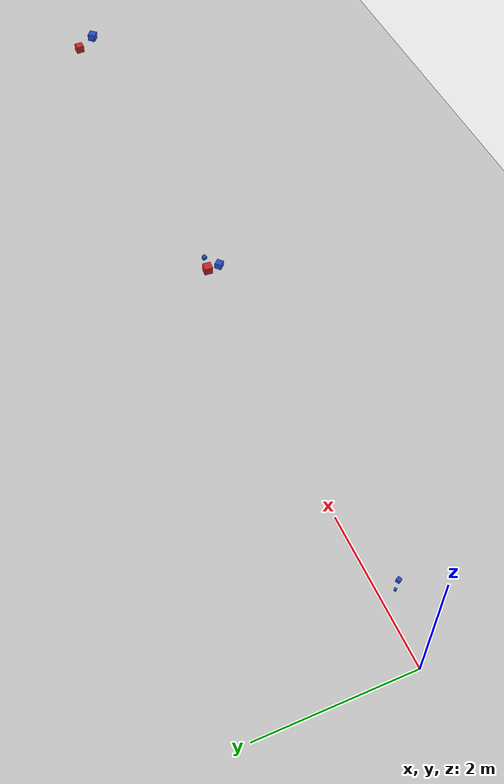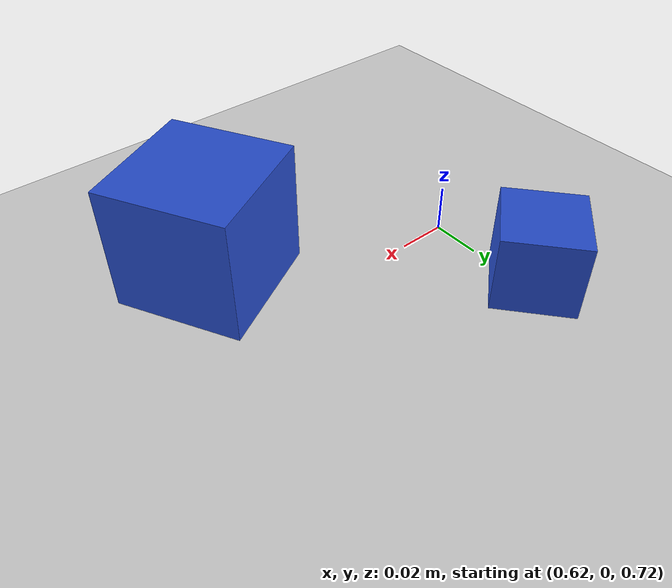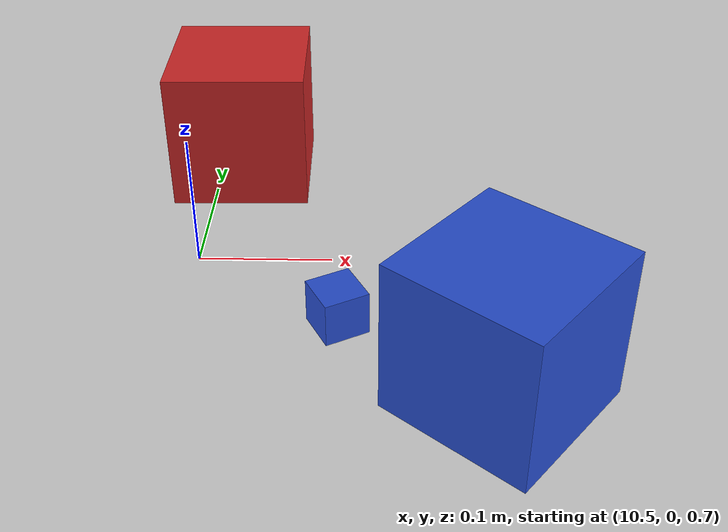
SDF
<sdf version="1.4">
 <world name="simple">
  <include><uri>model://ground_plane</uri></include>
  <include><uri>model://sun</uri></include>
  <include>
   <uri>model://blue_cube5cm</uri>
   <name>block12</name>
   <pose>0.713072616887 -0.0292858014987 0.75 0 0 0.500124438116</pose>
  </include>
  <include>
   <uri>model://blue_cube3cm</uri>
   <name>block14</name>
   <pose>0.632069324777 0.0563054480278 0.75 0 0 -2.43646721579</pose>
  </include>
  <include>
   <uri>model://red_cube11cm</uri>
   <name>block21</name>
   <pose>5.56282453672 0.105365024321 0.75 0 0 1.49714258318</pose>
  </include>
  <include>
   <uri>model://blue_cube5cm</uri>
   <name>block22</name>
   <pose>5.7582329603 0.0679344644461 0.75 0 0 0.219547503053</pose>
  </include>
  <include>
   <uri>model://blue_cube9cm</uri>
   <name>block24</name>
   <pose>5.5683994976 -0.0602882517664 0.75 0 0 -0.819139747382</pose>
  </include>
  <include>
   <uri>model://blue_cube11cm</uri>
   <name>block32</name>
   <pose>10.7141359348 -0.140709874662 0.75 0 0 0.886966666714</pose>
  </include>
  <include>
   <uri>model://red_cube11cm</uri>
   <name>block33</name>
   <pose>10.5189536412 0.141040934812 0.75 0 0 -3.119036409</pose>
  </include>
  <include>
   <uri>model://blue_cube3cm</uri>
   <name>block34</name>
   <pose>10.6104906675 -0.118560510849 0.75 0 0 0.488498586114</pose>
  </include>
 </world>
</sdf>

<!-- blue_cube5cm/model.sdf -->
<sdf version='1.4'>
  <model name="blue_cube5cm">
      <static>0</static>
      <link name='link'>
        <inertial>
          <mass>0.3</mass>
          <inertia>
            <ixx>0.001</ixx>
            <ixy>0.000000</ixy>
            <ixz>0.000000</ixz>
            <iyy>0.001</iyy>
            <iyz>0.000000</iyz>
            <izz>0.001</izz>
          </inertia>
        </inertial>
        <collision name='collision'>
          <geometry>
            <box>
              <size>0.050 0.050 0.050</size>
            </box>
          </geometry>
          <surface>
            <friction>
              <ode>
                <mu>5.0</mu>
                <mu2>5.0</mu2>
              </ode>
            </friction>
            <contact>
              <ode>
                <kp>1000000.0</kp>
                <kd>100.0</kd>
                <max_vel>1.0</max_vel>
                <min_depth>0.002</min_depth>
              </ode>
            </contact>
          </surface>
        </collision>
        <visual name='visual'>
          <geometry>
            <box>
              <size>0.050 0.050 0.050</size>
            </box>
          </geometry>
          <material>
            <script>
              <uri>file://media/materials/scripts/gazebo.material</uri>
              <name>Gazebo/Blue</name>
            </script>
          </material>
        </visual>
        <velocity_decay>
          <linear>0.000000</linear>
          <angular>0.000000</angular>
        </velocity_decay>
        <self_collide>0</self_collide>
        <kinematic>0</kinematic>
        <gravity>1</gravity>
      </link>
  </model>
</sdf>

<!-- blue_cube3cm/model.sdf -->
<sdf version='1.4'>
  <model name="blue_cube3cm">
      <static>0</static>
      <link name='link'>
        <inertial>
          <mass>0.3</mass>
          <inertia>
            <ixx>0.001</ixx>
            <ixy>0.000000</ixy>
            <ixz>0.000000</ixz>
            <iyy>0.001</iyy>
            <iyz>0.000000</iyz>
            <izz>0.001</izz>
          </inertia>
        </inertial>
        <collision name='collision'>
          <geometry>
            <box>
              <size>0.030 0.030 0.030</size>
            </box>
          </geometry>
          <surface>
            <friction>
              <ode>
                <mu>5.0</mu>
                <mu2>5.0</mu2>
              </ode>
            </friction>
            <contact>
              <ode>
                <kp>1000000.0</kp>
                <kd>100.0</kd>
                <max_vel>1.0</max_vel>
                <min_depth>0.002</min_depth>
              </ode>
            </contact>
          </surface>
        </collision>
        <visual name='visual'>
          <geometry>
            <box>
              <size>0.030 0.030 0.030</size>
            </box>
          </geometry>
          <material>
            <script>
              <uri>file://media/materials/scripts/gazebo.material</uri>
              <name>Gazebo/Blue</name>
            </script>
          </material>
        </visual>
        <velocity_decay>
          <linear>0.000000</linear>
          <angular>0.000000</angular>
        </velocity_decay>
        <self_collide>0</self_collide>
        <kinematic>0</kinematic>
        <gravity>1</gravity>
      </link>
  </model>
</sdf>

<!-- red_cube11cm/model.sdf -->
<sdf version='1.4'>
  <model name="red_cube11cm">
      <static>0</static>
      <link name='link'>
        <inertial>
          <mass>0.3</mass>
          <inertia>
            <ixx>0.001</ixx>
            <ixy>0.000000</ixy>
            <ixz>0.000000</ixz>
            <iyy>0.001</iyy>
            <iyz>0.000000</iyz>
            <izz>0.001</izz>
          </inertia>
        </inertial>
        <collision name='collision'>
          <geometry>
            <box>
              <size>0.110 0.110 0.110</size>
            </box>
          </geometry>
          <surface>
            <friction>
              <ode>
                <mu>5.0</mu>
                <mu2>5.0</mu2>
              </ode>
            </friction>
            <contact>
              <ode>
                <kp>1000000.0</kp>
                <kd>100.0</kd>
                <max_vel>1.0</max_vel>
                <min_depth>0.002</min_depth>
              </ode>
            </contact>
          </surface>
        </collision>
        <visual name='visual'>
          <geometry>
            <box>
              <size>0.110 0.110 0.110</size>
            </box>
          </geometry>
          <material>
            <script>
              <uri>file://media/materials/scripts/gazebo.material</uri>
              <name>Gazebo/Red</name>
            </script>
          </material>
        </visual>
        <velocity_decay>
          <linear>0.000000</linear>
          <angular>0.000000</angular>
        </velocity_decay>
        <self_collide>0</self_collide>
        <kinematic>0</kinematic>
        <gravity>1</gravity>
      </link>
  </model>
</sdf>

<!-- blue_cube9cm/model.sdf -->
<sdf version='1.4'>
  <model name="blue_cube9cm">
      <static>0</static>
      <link name='link'>
        <inertial>
          <mass>0.3</mass>
          <inertia>
            <ixx>0.001</ixx>
            <ixy>0.000000</ixy>
            <ixz>0.000000</ixz>
            <iyy>0.001</iyy>
            <iyz>0.000000</iyz>
            <izz>0.001</izz>
          </inertia>
        </inertial>
        <collision name='collision'>
          <geometry>
            <box>
              <size>0.090 0.090 0.090</size>
            </box>
          </geometry>
          <surface>
            <friction>
              <ode>
                <mu>5.0</mu>
                <mu2>5.0</mu2>
              </ode>
            </friction>
            <contact>
              <ode>
                <kp>1000000.0</kp>
                <kd>100.0</kd>
                <max_vel>1.0</max_vel>
                <min_depth>0.002</min_depth>
              </ode>
            </contact>
          </surface>
        </collision>
        <visual name='visual'>
          <geometry>
            <box>
              <size>0.090 0.090 0.090</size>
            </box>
          </geometry>
          <material>
            <script>
              <uri>file://media/materials/scripts/gazebo.material</uri>
              <name>Gazebo/Blue</name>
            </script>
          </material>
        </visual>
        <velocity_decay>
          <linear>0.000000</linear>
          <angular>0.000000</angular>
        </velocity_decay>
        <self_collide>0</self_collide>
        <kinematic>0</kinematic>
        <gravity>1</gravity>
      </link>
  </model>
</sdf>

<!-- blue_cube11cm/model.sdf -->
<sdf version='1.4'>
  <model name="blue_cube11cm">
      <static>0</static>
      <link name='link'>
        <inertial>
          <mass>0.3</mass>
          <inertia>
            <ixx>0.001</ixx>
            <ixy>0.000000</ixy>
            <ixz>0.000000</ixz>
            <iyy>0.001</iyy>
            <iyz>0.000000</iyz>
            <izz>0.001</izz>
          </inertia>
        </inertial>
        <collision name='collision'>
          <geometry>
            <box>
              <size>0.110 0.110 0.110</size>
            </box>
          </geometry>
          <surface>
            <friction>
              <ode>
                <mu>5.0</mu>
                <mu2>5.0</mu2>
              </ode>
            </friction>
            <contact>
              <ode>
                <kp>1000000.0</kp>
                <kd>100.0</kd>
                <max_vel>1.0</max_vel>
                <min_depth>0.002</min_depth>
              </ode>
            </contact>
          </surface>
        </collision>
        <visual name='visual'>
          <geometry>
            <box>
              <size>0.110 0.110 0.110</size>
            </box>
          </geometry>
          <material>
            <script>
              <uri>file://media/materials/scripts/gazebo.material</uri>
              <name>Gazebo/Blue</name>
            </script>
          </material>
        </visual>
        <velocity_decay>
          <linear>0.000000</linear>
          <angular>0.000000</angular>
        </velocity_decay>
        <self_collide>0</self_collide>
        <kinematic>0</kinematic>
        <gravity>1</gravity>
      </link>
  </model>
</sdf>
